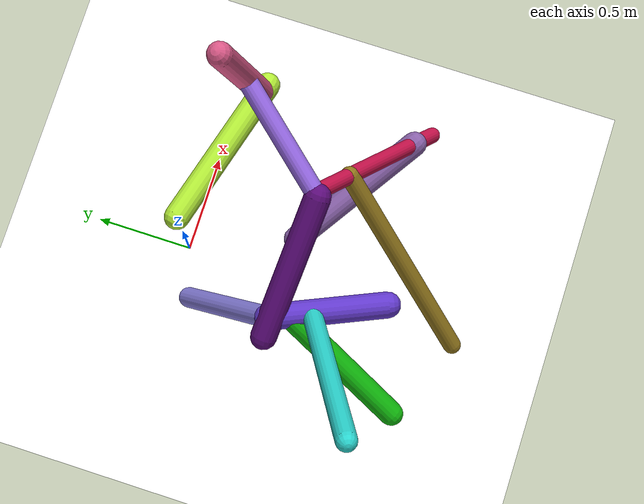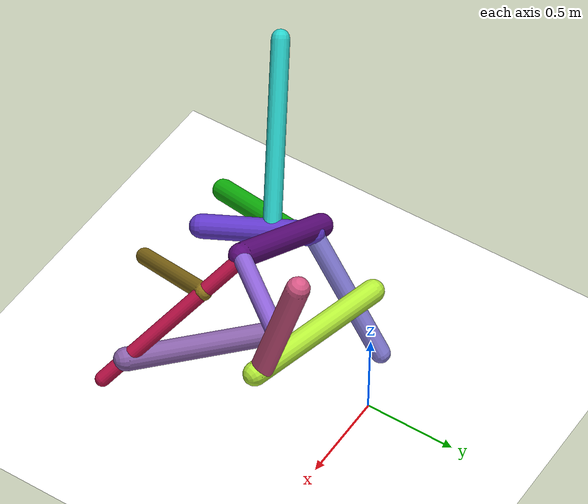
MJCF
<mujoco model="morphology">
  <option timestep="0.01"/>
  <default>
    <default class="/"/>
    <default class="0/"/>
    <default class="0/1/"/>
    <default class="0/1/2/"/>
    <default class="0/1/2/3/"/>
    <default class="0/1/2/3/4/"/>
    <default class="0/1/2/3/4/5/"/>
    <default class="0/1/2/3/4/5/6/"/>
    <default class="0/1/2/3/4/5/7/"/>
    <default class="0/1/2/8/"/>
    <default class="0/1/2/8/9/"/>
    <default class="0/1/2/8/10/"/>
  </default>
  <asset>
    <texture name="texplane" type="2d" builtin="checker" rgb1="0.10000000000000001 0.20000000000000001 0.29999999999999999" rgb2="0.20000000000000001 0.29999999999999999 0.40000000000000002" width="300" height="300"/>
    <material name="MatPlane" class="/" texture="texplane" texrepeat="20 20" specular="1" shininess="1" reflectance="0.5"/>
  </asset>
  <worldbody>
    <light name="//unnamed_light_0" class="/" directional="true" pos="0 0 1.5" dir="0 0 -1.3" cutoff="100" exponent="1" diffuse="1 1 1" specular="0.10000000000000001 0.10000000000000001 0.10000000000000001"/>
    <geom name="ground" class="/" type="plane" size="15 15 0.5" material="MatPlane" rgba="1 1 1 1"/>
    <site name="body" class="/" size="9.9999999999999995e-07 9.9999999999999995e-07 9.9999999999999995e-07" pos="0 0 0.88446537256240843"/>
    <body pos="0 0 0.88446537256240843" name="0/">
      <freejoint name="0/"/>
      <geom name="0/geom" class="0/" type="capsule" contype="1" conaffinity="1" condim="3" size="0.060654694536728546" rgba="0.70618618952220191 0.92696179267257994 0.21990553590595419 1" friction="0.59999999999999998 0.10000000000000001 0.10000000000000001" fromto="0 0 0 0.73850092510168297 -0.20258771208147519 -0.02749989030457789"/>
      <site name="0/end0" class="0/" size="0.0050000000000000001" pos="0.73850092510168297 -0.20258771208147519 -0.02749989030457789"/>
      <site name="0/attach1" class="0/" size="9.9999999999999995e-07 9.9999999999999995e-07 9.9999999999999995e-07" pos="0.69813000527448699 -0.19151304446167472 -0.02599658024902185"/>
      <body pos="0.69813000527448699 -0.19151304446167472 -0.02599658024902185" name="0/1/">
        <joint name="0/1/joint/" class="0/" type="hinge" axis="0 0 1" limited="true" range="-56.449379079718049 56.449379079718049"/>
        <geom name="0/1/geom" class="0/1/" type="capsule" contype="1" conaffinity="1" condim="3" size="0.059092390149588371" rgba="0.84648054992753441 0.34302241156945434 0.52704156509961253 1" friction="0.59999999999999998 0.10000000000000001 0.10000000000000001" fromto="0 0 0 -0.063087200276935818 0.1630787338804025 0.62507993799071881"/>
        <site name="0/1/end1" class="0/1/" size="0.0050000000000000001" pos="-0.063087200276935818 0.1630787338804025 0.62507993799071881"/>
        <site name="0/1/attach2" class="0/1/" size="9.9999999999999995e-07 9.9999999999999995e-07 9.9999999999999995e-07" pos="-0.027302856870640758 0.07057715844476535 0.27052188090060103"/>
        <body pos="-0.027302856870640758 0.07057715844476535 0.27052188090060103" name="0/1/2/">
          <geom name="0/1/2/geom" class="0/1/2/" type="capsule" contype="1" conaffinity="1" condim="3" size="0.046738090682596448" rgba="0.57580871899729658 0.4011418150190913 0.87718192542023266 1" friction="0.59999999999999998 0.10000000000000001 0.10000000000000001" fromto="0 0 0 -0.41611494811150423 -0.48872730127158159 -0.10820575457152892"/>
          <site name="0/1/2/end2" class="0/1/2/" size="0.0050000000000000001" pos="-0.41611494811150423 -0.48872730127158159 -0.10820575457152892"/>
          <site name="0/1/2/attach3" class="0/1/2/" size="9.9999999999999995e-07 9.9999999999999995e-07 9.9999999999999995e-07" pos="-0.40786339190785081 -0.47903584266620203 -0.1060600352950216"/>
          <body pos="-0.40786339190785081 -0.47903584266620203 -0.1060600352950216" name="0/1/2/3/">
            <joint name="0/1/2/3/joint/" class="0/1/2/" type="hinge" axis="0.76899175005365972 -0.62414414375919458 -0.13818746745096464" limited="true" range="-53.324940737522439 53.324940737522439"/>
            <geom name="0/1/2/3/geom" class="0/1/2/3/" type="capsule" contype="1" conaffinity="1" condim="3" size="0.064467927184202606" rgba="0.35875998163690503 0.044085865129974144 0.47882344805789523 1" friction="0.59999999999999998 0.10000000000000001 0.10000000000000001" fromto="0 0 0 -0.65007167503251351 0.052491289474716929 -0.34041133095775189"/>
            <site name="0/1/2/3/end3" class="0/1/2/3/" size="0.0050000000000000001" pos="-0.65007167503251351 0.052491289474716929 -0.34041133095775189"/>
            <site name="0/1/2/3/attach4" class="0/1/2/3/" size="9.9999999999999995e-07 9.9999999999999995e-07 9.9999999999999995e-07" pos="-0.56127024979173445 0.045320847357164226 -0.29391028727568869"/>
            <body pos="-0.56127024979173445 0.045320847357164226 -0.29391028727568869" name="0/1/2/3/4/">
              <joint name="0/1/2/3/4/joint/" class="0/1/2/3/" type="hinge" axis="-0.4681839436783346 -0.13466396517989376 0.87330945910589464" limited="true" range="-57.27380863440569 57.27380863440569"/>
              <geom name="0/1/2/3/4/geom" class="0/1/2/3/4/" type="capsule" contype="1" conaffinity="1" condim="3" size="0.052857110993920327" rgba="0.5357536947609649 0.50295257731806764 0.86978289323967528 1" friction="0.59999999999999998 0.10000000000000001 0.10000000000000001" fromto="0 0 0 0.038857737736132547 0.4634717328967799 -0.62902037195308225"/>
              <site name="0/1/2/3/4/end4" class="0/1/2/3/4/" size="0.0050000000000000001" pos="0.038857737736132547 0.4634717328967799 -0.62902037195308225"/>
              <site name="0/1/2/3/4/attach5" class="0/1/2/3/4/" size="9.9999999999999995e-07 9.9999999999999995e-07 9.9999999999999995e-07" pos="0.0013018257553831646 0.015527394900708551 -0.021073664309277977"/>
              <body pos="0.0013018257553831646 0.015527394900708551 -0.021073664309277977" name="0/1/2/3/4/5/">
                <joint name="0/1/2/3/4/5/joint/" class="0/1/2/3/4/" type="hinge" axis="0 0.80506620478154001 0.5931849677112927" limited="true" range="-43.682585445201013 43.682585445201013"/>
                <geom name="0/1/2/3/4/5/geom" class="0/1/2/3/4/5/" type="capsule" contype="1" conaffinity="1" condim="3" size="0.064281091535069057" rgba="0.3828462342223361 0.2241090863292261 0.79607189325218342 1" friction="0.59999999999999998 0.10000000000000001 0.10000000000000001" fromto="0 0 0 0.2356308434765586 -0.52250608675533661 -0.042154601811480563"/>
                <site name="0/1/2/3/4/5/end5" class="0/1/2/3/4/5/" size="0.0050000000000000001" pos="0.2356308434765586 -0.52250608675533661 -0.042154601811480563"/>
                <site name="0/1/2/3/4/5/attach6" class="0/1/2/3/4/5/" size="9.9999999999999995e-07 9.9999999999999995e-07 9.9999999999999995e-07" pos="0.086174521913390936 -0.19109006087081853 -0.015416711173955841"/>
                <body pos="0.086174521913390936 -0.19109006087081853 -0.015416711173955841" name="0/1/2/3/4/5/6/">
                  <joint name="0/1/2/3/4/5/6/joint/" class="0/1/2/3/4/5/" type="hinge" axis="0.91209128346372592 0.40865938009727276 0.032969708643018167" limited="true" range="-55.764219024126554 55.764219024126554"/>
                  <geom name="0/1/2/3/4/5/6/geom" class="0/1/2/3/4/5/6/" type="capsule" contype="1" conaffinity="1" condim="3" size="0.048794044286961866" rgba="0.16337842198563834 0.82686021433814894 0.80293935367675806 1" friction="0.59999999999999998 0.10000000000000001 0.10000000000000001" fromto="0 0 0 -0.55146290068165027 -0.31126119911211153 0.7453193209007225"/>
                  <site name="0/1/2/3/4/5/6/end6" class="0/1/2/3/4/5/6/" size="0.0050000000000000001" pos="-0.55146290068165027 -0.31126119911211153 0.7453193209007225"/>
                </body>
                <site name="0/1/2/3/4/5/attach7" class="0/1/2/3/4/5/" size="9.9999999999999995e-07 9.9999999999999995e-07 9.9999999999999995e-07" pos="0.041969979322034154 -0.09306748358238634 -0.0075084727459817117"/>
                <body pos="0.041969979322034154 -0.09306748358238634 -0.0075084727459817117" name="0/1/2/3/4/5/7/">
                  <joint name="0/1/2/3/4/5/7/joint/" class="0/1/2/3/4/5/" type="hinge" axis="0.91209128346372592 0.40865938009727276 0.032969708643018167" limited="true" range="-50.340539892648508 50.340539892648508"/>
                  <geom name="0/1/2/3/4/5/7/geom" class="0/1/2/3/4/5/7/" type="capsule" contype="1" conaffinity="1" condim="3" size="0.05936904364353543" rgba="0.067632868039455896 0.72246846039245338 0.053424239177569 1" friction="0.59999999999999998 0.10000000000000001 0.10000000000000001" fromto="0 0 0 -0.27517755360321622 -0.61240123669016322 -0.28787009327127228"/>
                  <site name="0/1/2/3/4/5/7/end7" class="0/1/2/3/4/5/7/" size="0.0050000000000000001" pos="-0.27517755360321622 -0.61240123669016322 -0.28787009327127228"/>
                </body>
              </body>
            </body>
          </body>
          <site name="0/1/2/attach8" class="0/1/2/" size="9.9999999999999995e-07 9.9999999999999995e-07 9.9999999999999995e-07" pos="-0.39358298532154545 -0.46226349501644692 -0.10234658501578447"/>
          <body pos="-0.39358298532154545 -0.46226349501644692 -0.10234658501578447" name="0/1/2/8/">
            <joint name="0/1/2/8/joint/" class="0/1/2/" type="hinge" axis="0.76899175005365972 -0.62414414375919458 -0.13818746745096464" limited="true" range="-39.583562740337939 39.583562740337939"/>
            <geom name="0/1/2/8/geom" class="0/1/2/8/" type="capsule" contype="1" conaffinity="1" condim="3" size="0.039831540935400339" rgba="0.7634098929091877 0.065123850537195715 0.28605104620566613 1" friction="0.59999999999999998 0.10000000000000001 0.10000000000000001" fromto="0 0 0 0.59175772186395403 -0.44573789772572214 -0.62168107362722802"/>
            <site name="0/1/2/8/end8" class="0/1/2/8/" size="0.0050000000000000001" pos="0.59175772186395403 -0.44573789772572214 -0.62168107362722802"/>
            <site name="0/1/2/8/attach9" class="0/1/2/8/" size="9.9999999999999995e-07 9.9999999999999995e-07 9.9999999999999995e-07" pos="0.16288958361004444 -0.12269558617851327 -0.17112640440485136"/>
            <body pos="0.16288958361004444 -0.12269558617851327 -0.17112640440485136" name="0/1/2/8/9/">
              <joint name="0/1/2/8/9/joint/" class="0/1/2/8/" type="hinge" axis="5.5511151231257827e-17 -0.81269344433339574 0.5826914840097821" limited="true" range="-51.093324744668607 51.093324744668607"/>
              <geom name="0/1/2/8/9/geom" class="0/1/2/8/9/" type="capsule" contype="1" conaffinity="1" condim="3" size="0.045740527997124913" rgba="0.56668278318579379 0.46048878163710194 0.10926601163988237 1" friction="0.59999999999999998 0.10000000000000001 0.10000000000000001" fromto="0 0 0 -0.52696668445359729 -0.74404301993501532 -0.67841819831282346"/>
              <site name="0/1/2/8/9/end9" class="0/1/2/8/9/" size="0.0050000000000000001" pos="-0.52696668445359729 -0.74404301993501532 -0.67841819831282346"/>
            </body>
            <site name="0/1/2/8/attach10" class="0/1/2/8/" size="9.9999999999999995e-07 9.9999999999999995e-07 9.9999999999999995e-07" pos="0.49411740626972223 -0.37219092504041312 -0.51910339025247909"/>
            <body pos="0.49411740626972223 -0.37219092504041312 -0.51910339025247909" name="0/1/2/8/10/">
              <geom name="0/1/2/8/10/geom" class="0/1/2/8/10/" type="capsule" contype="1" conaffinity="1" condim="3" size="0.061840980100241902" rgba="0.53876202477514934 0.38499325144987595 0.66660476019590853 1" friction="0.59999999999999998 0.10000000000000001 0.10000000000000001" fromto="0 0 0 -0.61240674298647924 0.41927429988603393 -0.13995160513271765"/>
              <site name="0/1/2/8/10/end10" class="0/1/2/8/10/" size="0.0050000000000000001" pos="-0.61240674298647924 0.41927429988603393 -0.13995160513271765"/>
            </body>
          </body>
        </body>
      </body>
      <camera name="0/iso" class="0/" mode="trackcom" pos="-2.2999999999999998 -2.2999999999999998 1" xyaxes="0.45000000000000001 -0.45000000000000001 0 0.29999999999999999 0.14999999999999999 0.93999999999999995"/>
    </body>
  </worldbody>
  <actuator>
    <motor name="0/1/motor" class="0/1/" ctrllimited="true" ctrlrange="-1 1" gear="72" joint="0/1/joint/"/>
    <motor name="0/1/2/3/motor" class="0/1/2/3/" ctrllimited="true" ctrlrange="-1 1" gear="66" joint="0/1/2/3/joint/"/>
    <motor name="0/1/2/3/4/motor" class="0/1/2/3/4/" ctrllimited="true" ctrlrange="-1 1" gear="79" joint="0/1/2/3/4/joint/"/>
    <motor name="0/1/2/3/4/5/motor" class="0/1/2/3/4/5/" ctrllimited="true" ctrlrange="-1 1" gear="81" joint="0/1/2/3/4/5/joint/"/>
    <motor name="0/1/2/3/4/5/6/motor" class="0/1/2/3/4/5/6/" ctrllimited="true" ctrlrange="-1 1" gear="73" joint="0/1/2/3/4/5/6/joint/"/>
    <motor name="0/1/2/3/4/5/7/motor" class="0/1/2/3/4/5/7/" ctrllimited="true" ctrlrange="-1 1" gear="67" joint="0/1/2/3/4/5/7/joint/"/>
    <motor name="0/1/2/8/motor" class="0/1/2/8/" ctrllimited="true" ctrlrange="-1 1" gear="95" joint="0/1/2/8/joint/"/>
    <motor name="0/1/2/8/9/motor" class="0/1/2/8/9/" ctrllimited="true" ctrlrange="-1 1" gear="71" joint="0/1/2/8/9/joint/"/>
  </actuator>
  <sensor>
    <subtreelinvel name="velocity" body="0/"/>
  </sensor>
</mujoco>
